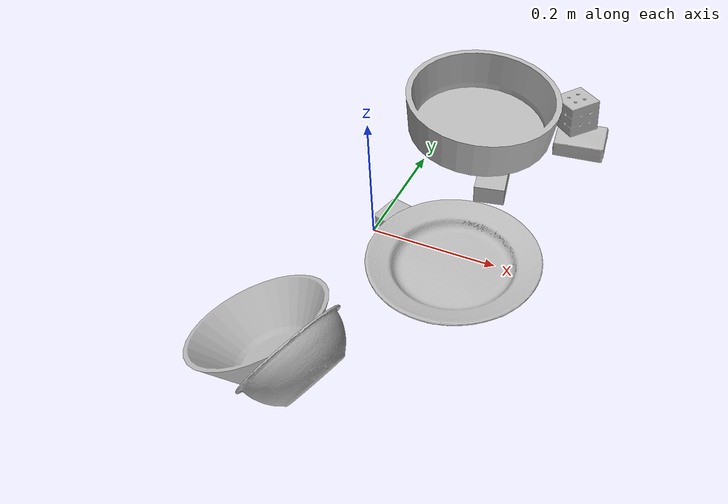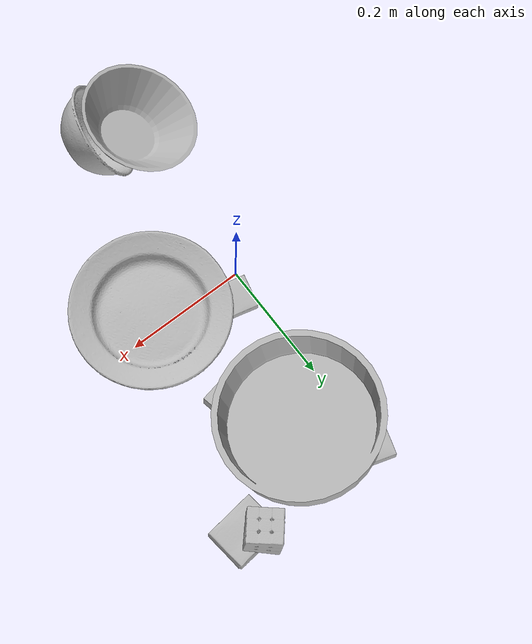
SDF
<sdf version="1.4">
  <world name="default">
    <light name="light1" type="point">
      <pose>0 0 1 0 0 0</pose>
      <diffuse>3 3 3 1</diffuse>
      <specular>3 3 3 1</specular>
    </light>
    <light name="light2" type="point">
      <pose>0 0.5 2 0 0 0</pose>
      <diffuse>1 1 1 1</diffuse>
      <specular>1 1 1 1</specular>
    </light>
    <light name="light3" type="point">
      <pose>0 0.5 2 0 0 0</pose>
      <diffuse>3 3 3 1</diffuse>
      <specular>3 3 3 1</specular>
    </light>
    <scene>
      <ambient>0.7 0.7 0.7</ambient>
    </scene>
    <model name="box1">
      <link name="link_box1">
        <collision name="default">
          <geometry>
            <mesh>
              <uri>model://gelatin_box/collision_meshes/collision.obj</uri>
              <scale>1.0 1.0 1.0</scale>
            </mesh>
          </geometry>
          <surface>
            <friction>
              <ode>
                <mu>0.5</mu>
                <mu2>0.5</mu2>
              </ode>
            </friction>
          <contact>
        <ode>
            <max_vel>0</max_vel>
            <min_depth>0.0001</min_depth>
            <kp>1e8</kp>
        </ode>
    </contact></surface>
        </collision>
        <visual name="default">
          <geometry>
            <mesh>
              <uri>model://gelatin_box/visual_meshes/visual.dae</uri>
              <scale>1.0 1.0 1.0</scale>
            </mesh>
          </geometry>
        </visual>
        <inertial>
          <mass>0.1979130208492279</mass>
          <pose>0.0004319618456065655 0.00011156871914863586 -0.0003640321083366871 -0.0010503722055948273 -0.004755818222760974 0.016440559471883928</pose>
          <inertia>
            <ixx>0.00013971045</ixx>
            <iyy>9.9794444e-05</iyy>
            <izz>0.00021267045</izz>
            <ixy>0</ixy>
            <ixz>0</ixz>
            <iyz>0</iyz>
          </inertia>
        </inertial>
      </link>
      <pose>0.24273493885993958 0.33873847126960754 0.01543109305202961 -0.006909352919835041 0.01308180911153609 1.6805617420159837</pose>
    </model>
    <model name="box11">
      <link name="link_box11">
        <collision name="default">
          <geometry>
            <mesh>
              <uri>model://sugar_box/collision_meshes/collision.obj</uri>
              <scale>0.5 0.5 0.5</scale>
            </mesh>
          </geometry>
          <surface>
            <friction>
              <ode>
                <mu>0.5</mu>
                <mu2>0.5</mu2>
              </ode>
            </friction>
          <contact>
        <ode>
            <max_vel>0</max_vel>
            <min_depth>0.0001</min_depth>
            <kp>1e8</kp>
        </ode>
    </contact></surface>
        </collision>
        <visual name="default">
          <geometry>
            <mesh>
              <uri>model://sugar_box/visual_meshes/visual.dae</uri>
              <scale>0.5 0.5 0.5</scale>
            </mesh>
          </geometry>
        </visual>
        <inertial>
          <mass>0.10992158949375153</mass>
          <pose>0.0005171863595023751 1.924554817378521e-05 -0.00018182402709499002 -0.00040462650409139634 0.0010506636387973133 0.002615378555960767</pose>
          <inertia>
            <ixx>2.2896586e-05</ixx>
            <iyy>7.400649e-05</iyy>
            <izz>8.8594585e-05</izz>
            <ixy>0</ixy>
            <ixz>0</ixz>
            <iyz>0</iyz>
          </inertia>
        </inertial>
      </link>
      <pose>0.020038843154907227 0.35116878151893616 0.011399304494261742 0.0007755877964289596 -0.023432816771711395 2.8428307698160564</pose>
    </model>
    <model name="box2">
      <link name="link_box2">
        <collision name="default">
          <geometry>
            <mesh>
              <uri>model://jenga/collision_meshes/collision.obj</uri>
              <scale>1.0 1.0 1.0</scale>
            </mesh>
          </geometry>
          <surface>
            <friction>
              <ode>
                <mu>0.5</mu>
                <mu2>0.5</mu2>
              </ode>
            </friction>
          <contact>
        <ode>
            <max_vel>0</max_vel>
            <min_depth>0.0001</min_depth>
            <kp>1e8</kp>
        </ode>
    </contact></surface>
        </collision>
        <visual name="default">
          <geometry>
            <mesh>
              <uri>model://jenga/visual_meshes/visual.dae</uri>
              <scale>1.0 1.0 1.0</scale>
            </mesh>
          </geometry>
        </visual>
        <inertial>
          <mass>0.12651896476745605</mass>
          <pose>-2.502855807051674e-07 -0.00010250010382151231 -4.0923401684267446e-05 0.0 -7.34215461761844e-07 0.0</pose>
          <inertia>
            <ixx>3.5010868e-05</ixx>
            <iyy>0.00023723267</iyy>
            <izz>0.00025326604</izz>
            <ixy>0</ixy>
            <ixz>0</ixz>
            <iyz>0</iyz>
          </inertia>
        </inertial>
      </link>
      <pose>0.1290675401687622 0.20609042048454285 0.014997179619967937 0.00037814510240994747 -1.2086565976629852e-05 -1.376795849708918</pose>
    </model>
    <model name="box21">
      <link name="link_box21">
        <collision name="default">
          <geometry>
            <mesh>
              <uri>model://wood_block/collision_meshes/collision.obj</uri>
              <scale>0.5 0.5 0.5</scale>
            </mesh>
          </geometry>
          <surface>
            <friction>
              <ode>
                <mu>0.5</mu>
                <mu2>0.5</mu2>
              </ode>
            </friction>
          <contact>
        <ode>
            <max_vel>0</max_vel>
            <min_depth>0.0001</min_depth>
            <kp>1e8</kp>
        </ode>
    </contact></surface>
        </collision>
        <visual name="default">
          <geometry>
            <mesh>
              <uri>model://wood_block/visual_meshes/visual.dae</uri>
              <scale>0.5 0.5 0.5</scale>
            </mesh>
          </geometry>
        </visual>
        <inertial>
          <mass>0.17952100932598114</mass>
          <pose>-2.906657982748584e-06 -0.00028540476341731846 0.00013204291462898254 -0.052208472466385096 -0.005192695659959234 -0.0068613786899108485</pose>
          <inertia>
            <ixx>6.0056565e-05</ixx>
            <iyy>0.0001897187</iyy>
            <izz>0.00018900905</izz>
            <ixy>0</ixy>
            <ixz>0</ixz>
            <iyz>0</iyz>
          </inertia>
        </inertial>
      </link>
      <pose>0.013766564428806305 0.27426236867904663 0.022915268316864967 0.012386817328872696 0.00868523269444178 0.8775927280623309</pose>
    </model>
    <model name="box3">
      <link name="link_box3">
        <collision name="default">
          <geometry>
            <mesh>
              <uri>model://rubiks_cube/collision_meshes/collision.obj</uri>
              <scale>1.0 1.0 1.0</scale>
            </mesh>
          </geometry>
          <surface>
            <friction>
              <ode>
                <mu>0.5</mu>
                <mu2>0.5</mu2>
              </ode>
            </friction>
          <contact>
        <ode>
            <max_vel>0</max_vel>
            <min_depth>0.0001</min_depth>
            <kp>1e8</kp>
        </ode>
    </contact></surface>
        </collision>
        <visual name="default">
          <geometry>
            <mesh>
              <uri>model://rubiks_cube/visual_meshes/visual.dae</uri>
              <scale>1.0 1.0 1.0</scale>
            </mesh>
          </geometry>
        </visual>
        <inertial>
          <mass>0.2539031207561493</mass>
          <pose>2.6721041649580002e-05 5.2569666877388954e-05 -7.264316082000732e-06 -0.05467208428881645 -0.09814040742269707 -0.034455380154792534</pose>
          <inertia>
            <ixx>0.00014029852</ixx>
            <iyy>0.00013964424</iyy>
            <izz>0.00014146113</izz>
            <ixy>0</ixy>
            <ixz>0</ixz>
            <iyz>0</iyz>
          </inertia>
        </inertial>
      </link>
      <pose>0.22335313260555267 0.3601052463054657 0.05838295444846153 0.042530889389401964 -0.057578389678726485 -0.7100333948529961</pose>
    </model>
    <model name="box31">
      <link name="link_box31">
        <collision name="default">
          <geometry>
            <mesh>
              <uri>model://pudding_box/collision_meshes/collision.obj</uri>
              <scale>0.5 0.5 0.5</scale>
            </mesh>
          </geometry>
          <surface>
            <friction>
              <ode>
                <mu>0.5</mu>
                <mu2>0.5</mu2>
              </ode>
            </friction>
          <contact>
        <ode>
            <max_vel>0</max_vel>
            <min_depth>0.0001</min_depth>
            <kp>1e8</kp>
        </ode>
    </contact></surface>
        </collision>
        <visual name="default">
          <geometry>
            <mesh>
              <uri>model://pudding_box/visual_meshes/visual.dae</uri>
              <scale>0.5 0.5 0.5</scale>
            </mesh>
          </geometry>
        </visual>
        <inertial>
          <mass>0.030597222968935966</mass>
          <pose>0.00024474109522998333 0.00040339428232982755 -0.00025944135268218815 0.005213101792545572 -0.006603798718575614 0.020079825159656634</pose>
          <inertia>
            <ixx>8.6471455e-06</ixx>
            <iyy>5.8178607e-06</iyy>
            <izz>1.2769769e-05</izz>
            <ixy>0</ixy>
            <ixz>0</ixz>
            <iyz>0</iyz>
          </inertia>
        </inertial>
      </link>
      <pose>0.02151988260447979 0.03463977575302124 0.00986290443688631 0.02234849240013492 -0.011391733639353757 2.9053663617123067</pose>
    </model>
    <model name="plate1">
      <link name="link_plate1">
        <collision name="default">
          <geometry>
            <mesh>
              <uri>model://pan_tefal/collision_meshes/collision.obj</uri>
              <scale>1.0 1.0 1.0</scale>
            </mesh>
          </geometry>
          <surface>
            <friction>
              <ode>
                <mu>0.5</mu>
                <mu2>0.5</mu2>
              </ode>
            </friction>
          <contact>
        <ode>
            <max_vel>0</max_vel>
            <min_depth>0.0001</min_depth>
            <kp>1e8</kp>
        </ode>
    </contact></surface>
        </collision>
        <visual name="default">
          <geometry>
            <mesh>
              <uri>model://pan_tefal/visual_meshes/visual.dae</uri>
              <scale>1.0 1.0 1.0</scale>
            </mesh>
          </geometry>
        </visual>
        <inertial>
          <mass>1.6321053504943848</mass>
          <pose>-0.00018001697026193142 3.279276279499754e-05 -0.00851493887603283 0.0008190355512640809 -0.00033013448733331557 -0.33186498661790637</pose>
          <inertia>
            <ixx>0.011266344</ixx>
            <iyy>0.011338978</iyy>
            <izz>0.02073917</izz>
            <ixy>0</ixy>
            <ixz>0</ixz>
            <iyz>0</iyz>
          </inertia>
        </inertial>
      </link>
      <pose>0.08027096092700958 0.26413658261299133 0.07941776514053345 0.03496072402505716 -0.09335689011158456 2.234311927028788</pose>
    </model>
    <model name="bowl1">
      <link name="link_bowl1">
        <collision name="default">
          <geometry>
            <mesh>
              <uri>model://bowl/collision_meshes/collision.obj</uri>
              <scale>1.0 1.0 1.0</scale>
            </mesh>
          </geometry>
          <surface>
            <friction>
              <ode>
                <mu>0.5</mu>
                <mu2>0.5</mu2>
              </ode>
            </friction>
          <contact>
        <ode>
            <max_vel>0</max_vel>
            <min_depth>0.0001</min_depth>
            <kp>1e8</kp>
        </ode>
    </contact></surface>
        </collision>
        <visual name="default">
          <geometry>
            <mesh>
              <uri>model://bowl/visual_meshes/visual.dae</uri>
              <scale>1.0 1.0 1.0</scale>
            </mesh>
          </geometry>
        </visual>
        <inertial>
          <mass>0.08853479474782944</mass>
          <pose>0.0002044534485321492 -0.0010302085429430008 -0.0008042657864280045 -0.015764086220495594 0.014546762208611713 0.7140398935341641</pose>
          <inertia>
            <ixx>0.00020337135</ixx>
            <iyy>0.00019882726</iyy>
            <izz>0.00034214073</izz>
            <ixy>0</ixy>
            <ixz>0</ixz>
            <iyz>0</iyz>
          </inertia>
        </inertial>
      </link>
      <pose>0.055578406900167465 -0.3066607117652893 0.0587228499352932 -1.0377370846283924 -0.1735096742696927 1.1620348137139405</pose>
    </model>
    <model name="plate2">
      <link name="link_plate2">
        <collision name="default">
          <geometry>
            <mesh>
              <uri>model://plate/collision_meshes/collision.obj</uri>
              <scale>1.0 1.0 1.0</scale>
            </mesh>
          </geometry>
          <surface>
            <friction>
              <ode>
                <mu>0.5</mu>
                <mu2>0.5</mu2>
              </ode>
            </friction>
          <contact>
        <ode>
            <max_vel>0</max_vel>
            <min_depth>0.0001</min_depth>
            <kp>1e8</kp>
        </ode>
    </contact></surface>
        </collision>
        <visual name="default">
          <geometry>
            <mesh>
              <uri>model://plate/visual_meshes/visual.dae</uri>
              <scale>1.0 1.0 1.0</scale>
            </mesh>
          </geometry>
        </visual>
        <inertial>
          <mass>0.10531359910964966</mass>
          <pose>-0.0006044624024070799 0.00027825951110571623 -0.001056199660524726 0.0022187923451504944 -0.0032254757952566134 0.45260828030698763</pose>
          <inertia>
            <ixx>0.00049265905</ixx>
            <iyy>0.00048794702</iyy>
            <izz>0.0009635677</izz>
            <ixy>0</ixy>
            <ixz>0</ixz>
            <iyz>0</iyz>
          </inertia>
        </inertial>
      </link>
      <pose>0.1457856148481369 -0.029033232480287552 0.013733001425862312 -1.177742698474156e-08 -8.00878666706411e-09 -0.5411750228543762</pose>
    </model>
    <model name="bowl2">
      <link name="link_bowl2">
        <collision name="default">
          <geometry>
            <mesh>
              <uri>model://bowl_a/collision_meshes/collision.obj</uri>
              <scale>1.0 1.0 1.0</scale>
            </mesh>
          </geometry>
          <surface>
            <friction>
              <ode>
                <mu>0.5</mu>
                <mu2>0.5</mu2>
              </ode>
            </friction>
          <contact>
        <ode>
            <max_vel>0</max_vel>
            <min_depth>0.0001</min_depth>
            <kp>1e8</kp>
        </ode>
    </contact></surface>
        </collision>
        <visual name="default">
          <geometry>
            <mesh>
              <uri>model://bowl_a/visual_meshes/visual.dae</uri>
              <scale>1.0 1.0 1.0</scale>
            </mesh>
          </geometry>
        </visual>
        <inertial>
          <mass>0.4180941581726074</mass>
          <pose>0.000278673687716946 4.731199442176148e-05 -0.0013765294570475817 -0.0009805326545729344 -0.001093820496942545 -0.19124076645491772</pose>
          <inertia>
            <ixx>0.0011903334</ixx>
            <iyy>0.0011976411</iyy>
            <izz>0.0021170534</izz>
            <ixy>0</ixy>
            <ixz>0</ixz>
            <iyz>0</iyz>
          </inertia>
        </inertial>
      </link>
      <pose>-0.011438669636845589 -0.2841638922691345 0.04975259304046631 0.34661178618944816 -0.23667880002834973 -1.2616633702574729</pose>
    </model>
  <physics type="ode">
      <max_contacts>50</max_contacts>
      <ode>
        <solver>
          <type>quick</type>
          <iters>75</iters>
        </solver>
        <constraints>
          <contact_max_correcting_vel>0</contact_max_correcting_vel>
          <contact_surface_layer>0</contact_surface_layer>
        </constraints>
      </ode>
    </physics></world>
</sdf>
